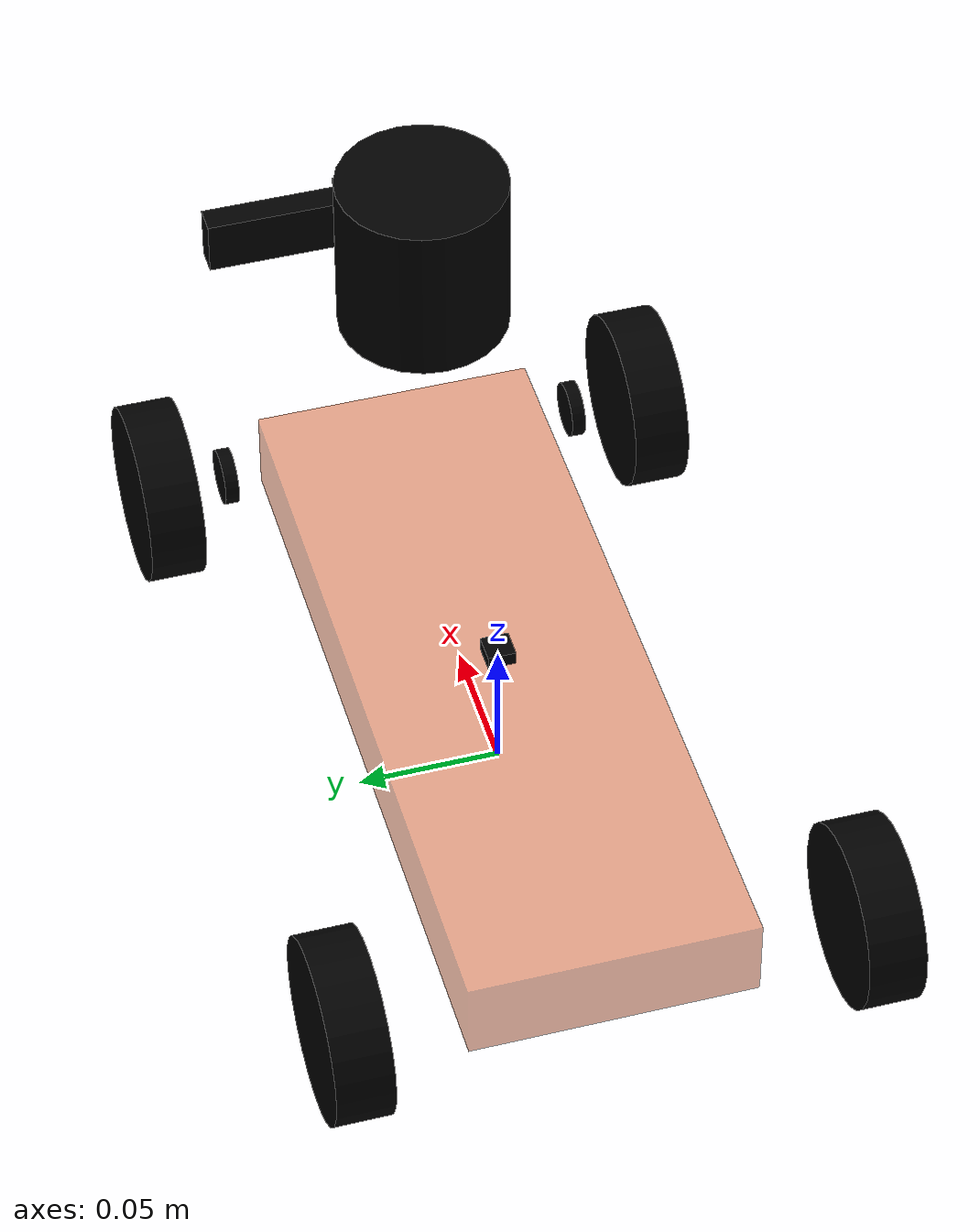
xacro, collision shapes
<?xml version="1.0" encoding="utf-8"?>

<robot name="racebot" xmlns:xacro="http://www.ros.org/wiki/xacro">

    <xacro:include filename="$(find racebot_description)/urdf/ackermann/macros.xacro" />

    <link name="base_footprint">
    </link>

    <link name="base_link">
        <visual>
            <geometry>
                <mesh filename="package://racebot_description/meshes/base_link.STL" />
            </geometry>
            <!-- 修改这里的 xyz 的第一个值(x)为负数，可以让车身向后移动。例如 -0.05 表示向后移动 5cm -->
            <origin xyz="-0.13 0 0.0" rpy="0 0 0" />
            <material name="yellow">
                <color rgba="0.8 0.3 0.1 0.5" />
            </material>
        </visual>
        <collision>
            <geometry>
                <box size="0.28 0.1 0.03" />
            </geometry>
            <origin xyz="0.0 0.0 0.0" rpy="0.0 0.0 0.0" />
        </collision>
    </link>

    <joint name="base_link2base_footprint" type="fixed">
        <parent link="base_footprint" />
        <child link="base_link"/>
        <origin xyz="0 0 0.032" rpy="0 0 0" />
    </joint>

    <link name="base_inertia">
    <inertial>
            <origin xyz="0 0 0" />
            <mass value="4" />
            <inertia ixx="0.0264" ixy="0" ixz="0" iyy="0.0294" iyz="0" izz="0.00364" />
        </inertial>
    </link>

    <joint name="chassis_inertia_joint" type="fixed">
    <origin xyz="0 0 0" rpy="0 0 0" />
    <parent link="base_link" />
    <child link="base_inertia" />
  </joint>

    <link name="left_steering_hinge">
        <visual>
            <geometry>
                <mesh filename="package://racebot_description/meshes/left_steering_hinge.STL" />
            </geometry>
            <origin xyz="0 0 0" rpy="0 0 0" />
            <material name="black">
                <color rgba="0.0 0.0 0.0 1.0" />
            </material>
        </visual>
        <collision>
            <geometry>
                <cylinder radius="0.01" length="0.005" />
            </geometry>
            <origin xyz="0.0 0.0 0.0" rpy="1.57 0.0 0.0" />
        </collision>
        <inertial>
            <origin xyz="0 0 0" />
            <mass value="0.5" />
            <inertia ixx="1.35E-05" ixy="0" ixz="0" iyy="1.35E-05" iyz="0" izz="2.5E-05" />
        </inertial>
    </link>

    <joint name="left_steering_hinge_joint" type="revolute">
        <parent link="base_link" />
        <child link="left_steering_hinge" />
        <origin xyz="0.13 0.065 0" />
        <axis xyz="0 0 1" />
        <limit lower="-0.6" upper="0.6" effort="5.0" velocity="1000.0"/>
    </joint>
    <xacro:steering_hinge_transmission name="left_steering_hinge" />

    <link name="left_front_wheel">
        <visual>
            <geometry>
                 <mesh filename="package://racebot_description/meshes/left_front_wheel.STL" />
            </geometry>
            <origin xyz="0 0 0" rpy="0 0 0" />
            <material name="black">
                <color rgba="0.0 0.0 0.0 1.0" />
            </material>
        </visual>
        <collision>
            <geometry>
                <cylinder radius="0.032" length="0.02" />
            </geometry>
            <origin xyz="0.0 0.0 0.0" rpy="1.57 0.0 0.0" />
        </collision>
        <inertial>
            <origin xyz="0 0 0" />
            <mass value="2.0" />
            <inertia ixx="6.64E-04" ixy="0" ixz="0" iyy="6.64E-04" iyz="0" izz="1.02E-03" />
        </inertial>
    </link>

    <joint name="left_front_wheel_joint" type="continuous">
        <parent link="left_steering_hinge" />
        <child link="left_front_wheel" />
        <origin xyz="0 0.025 0" />
        <axis xyz="0 1 0" />
        <limit effort="10" velocity="1000" />
    </joint>
     <xacro:wheel_transmission name="left_front_wheel" />

<link name="right_steering_hinge">
        <visual>
            <geometry>
                 <mesh filename="package://racebot_description/meshes/right_steering_hinge.STL" />
            </geometry>
            <origin xyz="0 0 0" rpy="0 0 0" />
            <material name="black">
                <color rgba="0.0 0.0 0.0 1.0" />
            </material>
        </visual>
        <collision>
            <geometry>
                <cylinder radius="0.01" length="0.005" />
            </geometry>
            <origin xyz="0.0 0.0 0.0" rpy="1.57 0.0 0.0" />
        </collision>
        <inertial>
            <origin xyz="0 0 0" />
            <mass value="0.5" />
            <inertia ixx="1.35E-05" ixy="0" ixz="0" iyy="1.35E-05" iyz="0" izz="2.5E-05" />
        </inertial>
    </link>

    <joint name="right_steering_hinge_joint" type="revolute">
        <parent link="base_link" />
        <child link="right_steering_hinge" />
        <origin xyz="0.13 -0.065 0" />
        <axis xyz="0 0 1" />
        <limit lower="-0.6" upper="0.6" effort="5.0" velocity="1000.0"/>
    </joint>
    <xacro:steering_hinge_transmission name="right_steering_hinge" />

     <link name="right_front_wheel">
        <visual>
            <geometry>
                <mesh filename="package://racebot_description/meshes/right_front_wheel.STL" />
            </geometry>
            <origin xyz="0 0 0" rpy="0 0 0" />
            <material name="black">
                <color rgba="0.0 0.0 0.0 1.0" />
            </material>
        </visual>
        <collision>
            <geometry>
                <cylinder radius="0.032" length="0.02" />
            </geometry>
            <origin xyz="0.0 0.0 0.0" rpy="1.57 0.0 0.0" />
        </collision>
        <inertial>
            <origin xyz="0 0 0" />
            <mass value="2.0" />
            <inertia ixx="6.64E-04" ixy="0" ixz="0" iyy="6.64E-04" iyz="0" izz="1.02E-03" />
        </inertial>
    </link>

    <joint name="right_front_wheel_joint" type="continuous">
        <parent link="right_steering_hinge" />
        <child link="right_front_wheel" />
        <origin xyz="0 -0.025 0" />
        <axis xyz="0 1 0" />
        <limit effort="10" velocity="1000" />
    </joint>
    <xacro:wheel_transmission name="right_front_wheel" />

    <link name="left_rear_wheel">
        <visual>
            <geometry>
                <mesh filename="package://racebot_description/meshes/left_rear_wheel.STL" />
            </geometry>
            <origin xyz="0 0 0" rpy="0 0 0" />
            <material name="black">
                <color rgba="0.0 0.0 0.0 1.0" />
            </material>
        </visual>
        <collision>
            <geometry>
                <cylinder radius="0.032" length="0.02" />
            </geometry>
            <origin xyz="0.0 0.0 0.0" rpy="1.57 0.0 0.0" />
        </collision>
        <inertial>
            <origin xyz="0 0 0" />
            <mass value="2.0" />
            <inertia ixx="6.64E-04" ixy="0" ixz="0" iyy="6.64E-04" iyz="0" izz="1.02E-03" />
        </inertial>
    </link>

    <joint name="left_rear_wheel_joint" type="continuous">
        <parent link="base_link" />
        <child link="left_rear_wheel" />
        <origin xyz="-0.13 0.09 0" />
        <axis xyz="0 1 0" />
        <limit effort="10" velocity="1000" />
    </joint>
    <xacro:wheel_transmission name="left_rear_wheel" />

    <link name="right_rear_wheel">
        <visual>
            <geometry>
                <mesh filename="package://racebot_description/meshes/right_rear_wheel.STL" />
            </geometry>
            <origin xyz="0 0 0" rpy="0 0 0" />
            <material name="black">
                <color rgba="0.0 0.0 0.0 1.0" />
            </material>
        </visual>
        <collision>
            <geometry>
                <cylinder radius="0.032" length="0.02" />
            </geometry>
            <origin xyz="0.0 0.0 0.0" rpy="1.57 0.0 0.0" />
        </collision>
        <inertial>
            <origin xyz="0 0 0" />
            <mass value="2.0" />
            <inertia ixx="6.64E-04" ixy="0" ixz="0" iyy="6.64E-04" iyz="0" izz="1.02E-03" />
        </inertial>
    </link>

    <joint name="right_rear_wheel_joint" type="continuous">
        <parent link="base_link" />
        <child link="right_rear_wheel" />
        <origin xyz="-0.13 -0.09 0" />
        <axis xyz="0 1 0" />
        <limit effort="10" velocity="1000" />
    </joint>
    <xacro:wheel_transmission name="right_rear_wheel" />

    <link name="camera">
        <visual>
            <geometry>
                <box size="0.005 0.03 0.03"/>
            </geometry>
            <origin xyz="0 0 0" rpy="0 0 0" />
            <material name="black">
                <color rgba="0.0 0.0 0.0 1.0" />
            </material>
        </visual>
        <collision>
            <geometry>
                <box size="0.005 0.03 0.03"/>
            </geometry>
            <origin xyz="0.0 0.0 0.0" rpy="0.0 0.0 0.0" />
        </collision>
        <inertial>
            <origin xyz="0 0 0" />
            <mass value="0.05" />
            <inertia ixx="6.64E-04" ixy="0" ixz="0" iyy="6.64E-04" iyz="0" izz="1.02E-03" />
        </inertial>
    </link>

    <joint name="camera_joint" type="fixed">
        <parent link="base_link" />
        <child link="camera" />
        <origin xyz="0.14851 0.0022137 0.0975" />
        <axis xyz="0 0 1" />
    </joint>

    <link name="real_sense">
        <visual>
            <geometry>
                <box size="0.01 0.1 0.02"/>
            </geometry>
            <origin xyz="0 0 0" rpy="0 0 0" />
            <material name="black">
                <color rgba="0.0 0.0 0.0 1.0" />
            </material>
        </visual>
        <collision>
            <geometry>
                <box size="0.01 0.1 0.02"/>
            </geometry>
            <origin xyz="0.0 0.0 0.0" rpy="0.0 0.0 0.0" />
        </collision>
        <inertial>
            <origin xyz="0 0 0" />
            <mass value="0.05" />
            <inertia ixx="6.64E-04" ixy="0" ixz="0" iyy="6.64E-04" iyz="0" izz="1.02E-03" />
        </inertial>
    </link>

    <joint name="realsense_joint" type="fixed">
        <parent link="base_link" />
        <child link="real_sense" />
        <origin xyz="0.19864 0.0038046 0.052021" />
        <axis xyz="0 0 1" />
    </joint>

    <link name="realsense_depth"/>
    <joint name="realsense_depth_joint" type="fixed">
            <origin xyz="0 0 0" rpy="-1.5708 0 -1.5708"/>
            <parent link="real_sense"/>
            <child link="realsense_depth"/>
    </joint>

    <link name="lidar">
        <visual>
            <geometry>
                <cylinder radius="0.03" length="0.06" />
            </geometry>
            <origin xyz="0 0 0" rpy="0 0 0" />
            <material name="black">
                <color rgba="0.0 0.0 0.0 1.0" />
            </material>
        </visual>
        <collision>
            <geometry>
                <cylinder radius="0.03" length="0.06" />
            </geometry>
            <origin xyz="0.0 0.0 0.0" rpy="0.0 0.0 0.0" />
        </collision>
        <inertial>
            <origin xyz="0 0 0" />
            <mass value="0.1" />
            <inertia ixx="6.64E-04" ixy="0" ixz="0" iyy="6.64E-04" iyz="0" izz="1.02E-03" />
        </inertial>
    </link>

    <joint name="lidar_joint" type="fixed">
        <parent link="base_link" />
        <child link="lidar" />
        <origin xyz="0.093603 0 0.12377" />
        <axis xyz="0 0 1" />
    </joint>

    <link name="imu">
        <visual>
            <geometry>
                <box size="0.01 0.01 0.005"/>
            </geometry>
            <origin xyz="0 0 0" rpy="0 0 0" />
            <material name="black">
                <color rgba="0.0 0.0 0.0 1.0" />
            </material>
        </visual>
        <collision>
            <geometry>
                <box size="0.01 0.01 0.005"/>
            </geometry>
            <origin xyz="0.0 0.0 0.0" rpy="0.0 0.0 0.0" />
        </collision>
        <inertial>
            <origin xyz="0 0 0" />
            <mass value="0.05" />
            <inertia ixx="6.64E-04" ixy="0" ixz="0" iyy="6.64E-04" iyz="0" izz="1.02E-03" />
        </inertial>
    </link>

    <joint name="imu_joint" type="fixed">
        <parent link="base_link" />
        <child link="imu" />
        <origin xyz="0 0 0.02" />
        <axis xyz="0 0 1" />
    </joint>

  <xacro:include filename="$(find racebot_description)/urdf/ackermann/racecar.gazebo" />

</robot>
